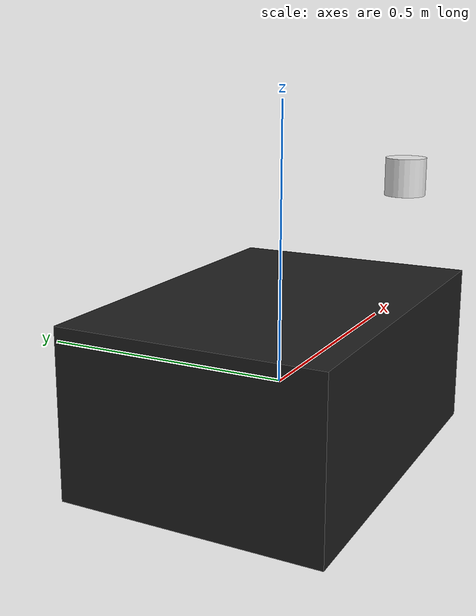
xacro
<?xml version="1.0" ?>
<robot name="hanwhabot_3465" xmlns:xacro="http://ros.org/wiki/xacro">
  <link name="base_footprint"/>

  <joint name="base_joint" type="fixed">
    <parent link="base_footprint"/>
    <child link="base_link"/>
    <origin xyz="0.0 0.0 0.01" rpy="0 0 0"/>
  </joint>

  <link name="base_link">
    <visual>
      <origin xyz="0 0 0" rpy="0 0 0"/>
      <geometry>
        <!-- plz input right value -->
        <box size="0.680 0.465 0.30"/>
      </geometry>
      <material name="light_black"/>
    </visual>
  </link>

  <link name="imu_link"/>
  <joint name="imu_joint" type="fixed">
    <parent link="base_link"/>
    <child link="imu_link"/>
    <origin xyz="-0.32 0 0.15" rpy="0 0 0"/>
  </joint>

  <joint name="scan_joint" type="fixed">
    <parent link="base_link"/>
    <child link="base_scan"/>
    <origin xyz="0.34 0 0.14" rpy="0 0 0"/>
  </joint>

  <link name="base_scan">
    <visual>
      <origin xyz="0.34 0 0.14" rpy="0 0 0"/>
      <geometry>
        <cylinder length="0.088" radius="0.0475"/>
      </geometry>
      <material name="white"/>
    </visual>
  </link>

  <link name="camera_link"/>
  <joint name="camera_joint" type="fixed">
    <parent link="base_link"/>
    <child link="camera_link"/>
    <origin xyz="0.34 0 0.15" rpy="0 0 0"/>
  </joint>
</robot>
